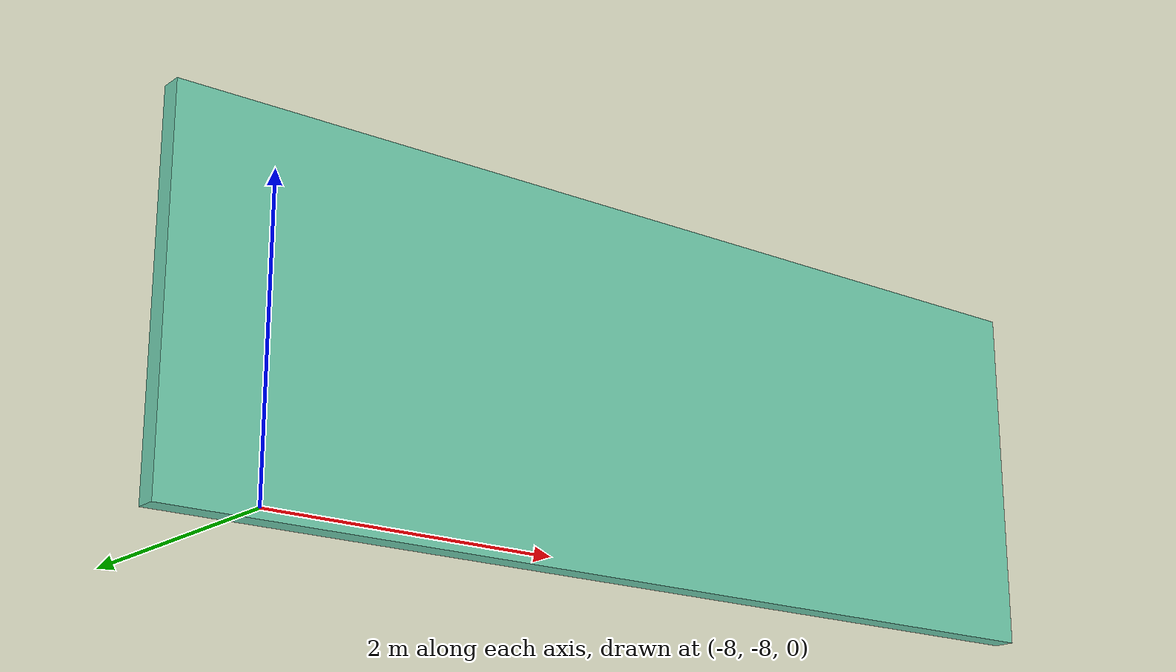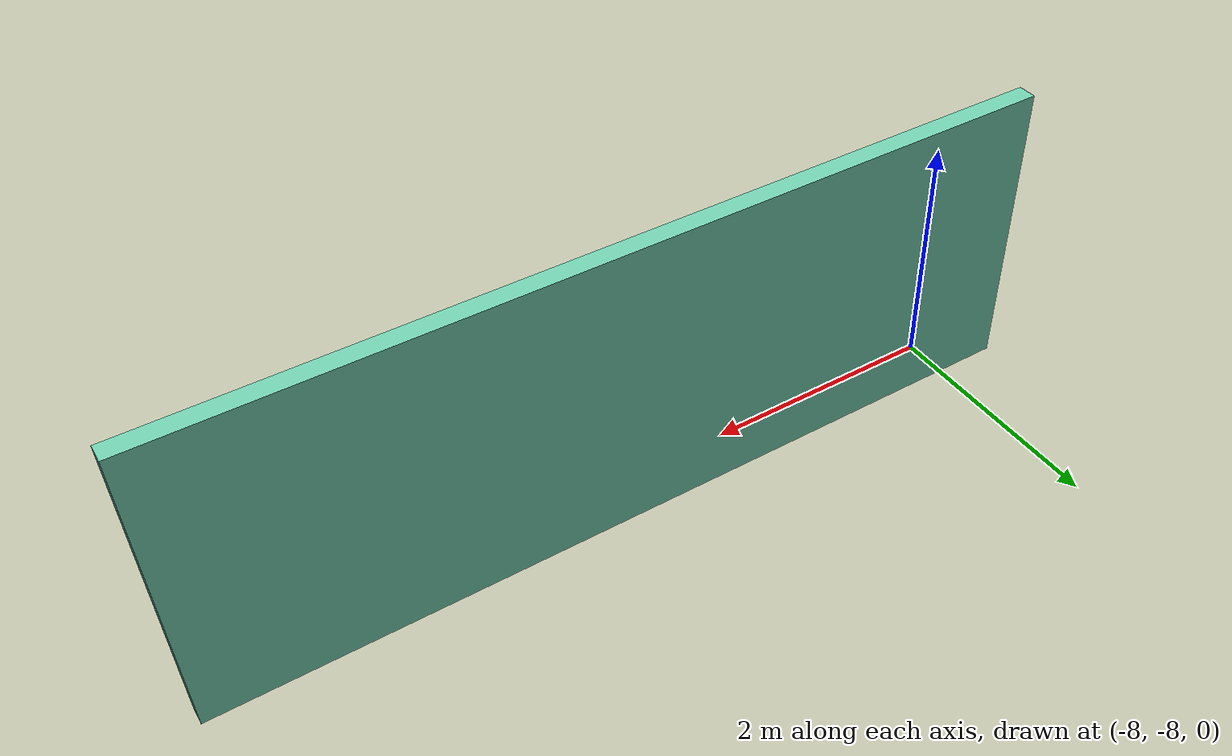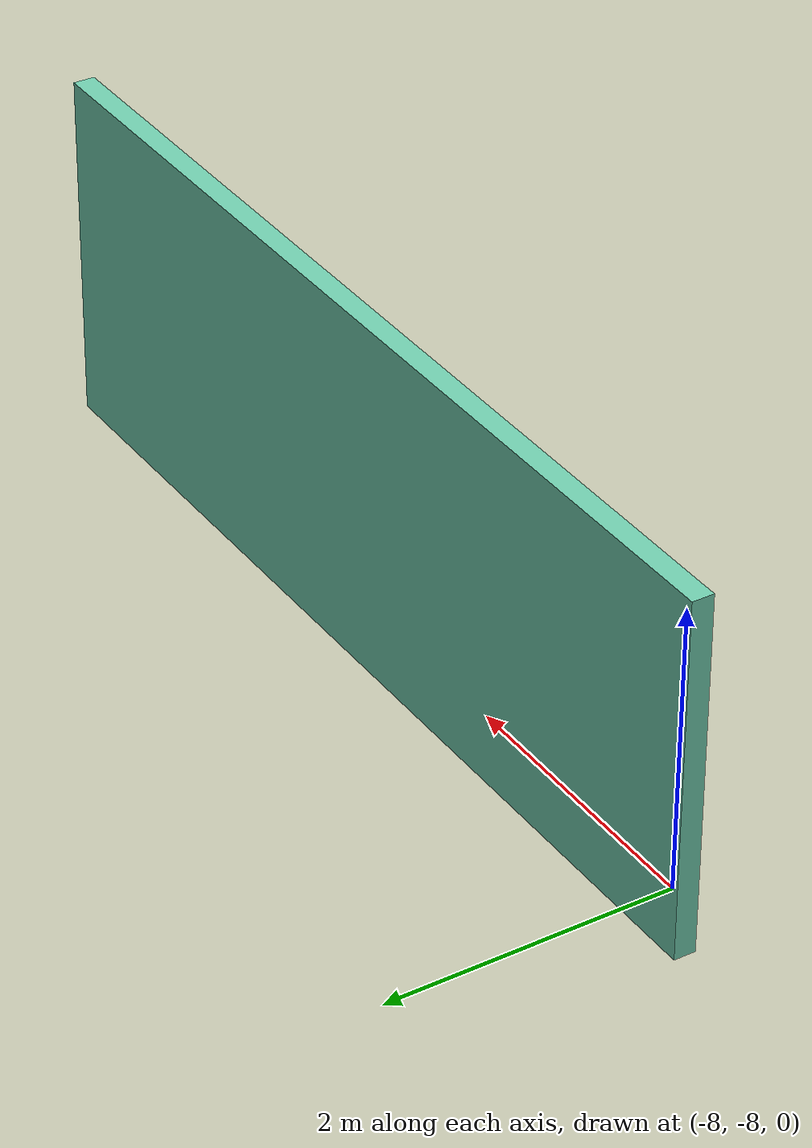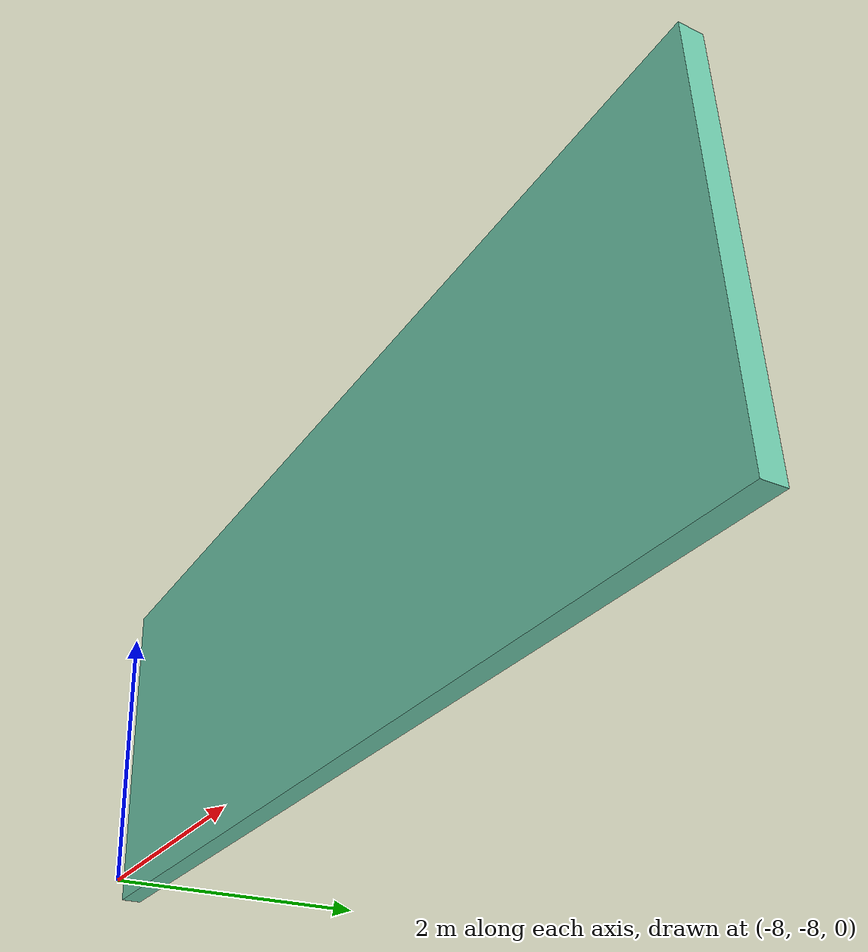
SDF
<?xml version='1.0'?>
<sdf version='1.6'>
  <model name='Wall'>
    <pose frame=''>-5.0388 -7.70352 0 0 -0 0</pose>
    <link name='Wall_2'>
      <collision name='Wall_2_Collision'>
        <geometry>
          <box>
            <size>7 0.15 2.5</size>
          </box>
        </geometry>
        <pose frame=''>0 0 1.25 0 -0 0</pose>
      </collision>
      <visual name='Wall_2_Visual'>
        <pose frame=''>0 0 1.25 0 -0 0</pose>
        <geometry>
          <box>
            <size>7 0.15 2.5</size>
          </box>
        </geometry>
        <material>
          <script>
            <uri>file://media/materials/scripts/gazebo.material</uri>
            <name>Gazebo/Grey</name>
          </script>
          <ambient>0.435294 0.796078 0.67451 1</ambient>
        </material>
        <meta>
          <layer>0</layer>
        </meta>
      </visual>
      <pose frame=''>0 0 0 0 -0 0</pose>
    </link>
    <static>1</static>
  </model>
</sdf>
